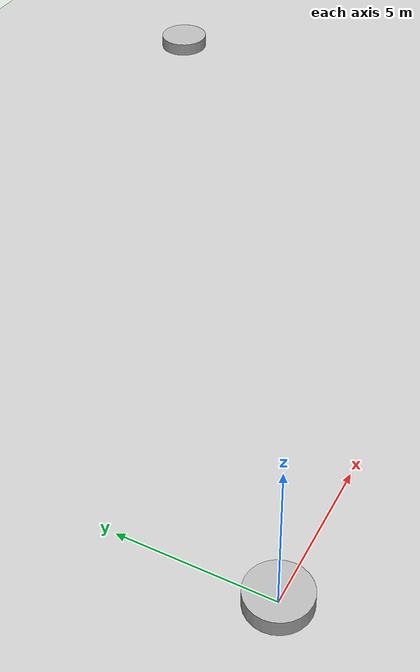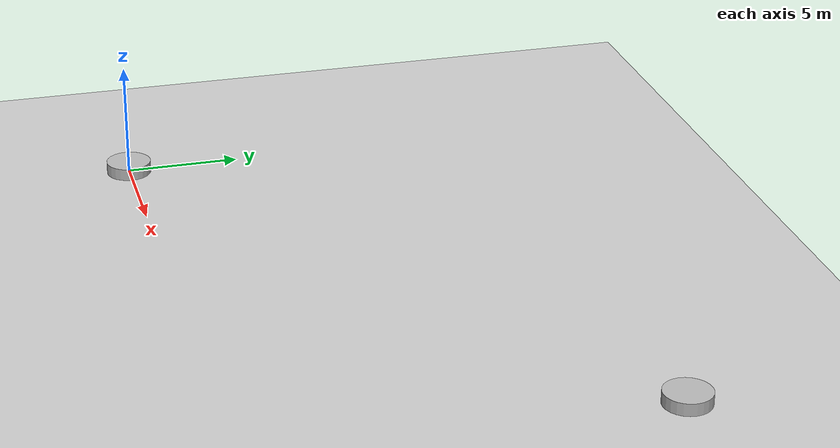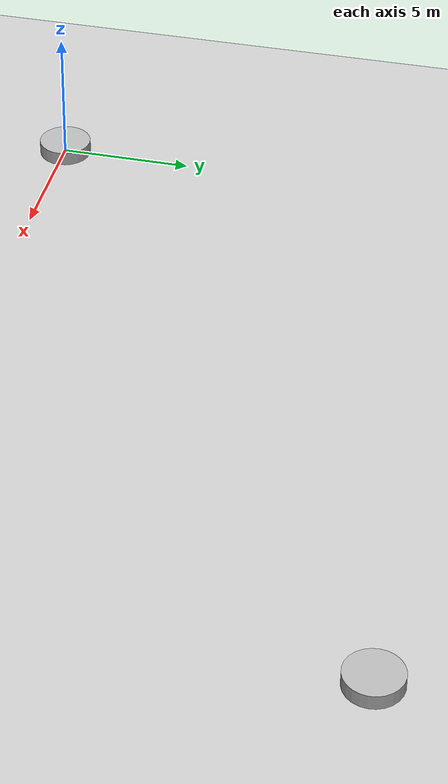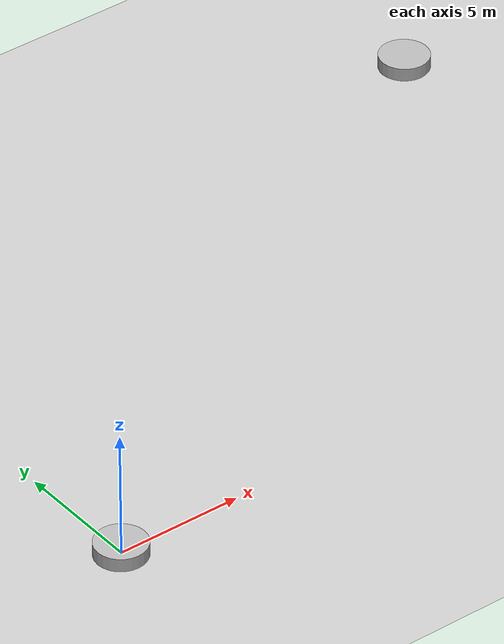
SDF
<?xml version="1.0"?>
<sdf version="1.6">
  <world name="default">

    <!-- A global light source -->
    <include>
      <uri>model://sun</uri>
    </include>

    <!-- A ground plane -->
    <include>
      <uri>model://ground_plane</uri>
    </include>

    <!-- Initial Landing Zone -->
    <include>
      <uri>model://landing</uri>
      <name>initial_landing_zone</name>
      <pose>0 0 0 0 0 0</pose>
    </include>

    <!-- Final Landing Zone -->
    <include>
      <uri>model://landing</uri>
      <name>final_landing_zone</name>
      <pose>26 17 0 0 0 0</pose>
    </include>

  </world>
</sdf>

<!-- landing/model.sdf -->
<sdf version="1.5">
  <model name="landing">
    <static>true</static>
    <link name="link">
      <pose>0 0 0 0 0 0</pose>
      <collision name="collision">
        <geometry>
          <cylinder>
            <radius>1</radius>
            <length>1</length>
          </cylinder>
        </geometry>
      </collision>
      <visual name="visual">
        <geometry>
          <cylinder>
            <radius>1</radius>
            <length>1</length>
          </cylinder>
        </geometry>
        <material>
          <script>
            <uri>model://landing/materials/scripts</uri>
            <uri>model://landing/materials/textures</uri>
            <name>vrc/landing</name>
          </script>
        </material>
      </visual>
    </link>
  </model>
</sdf>
